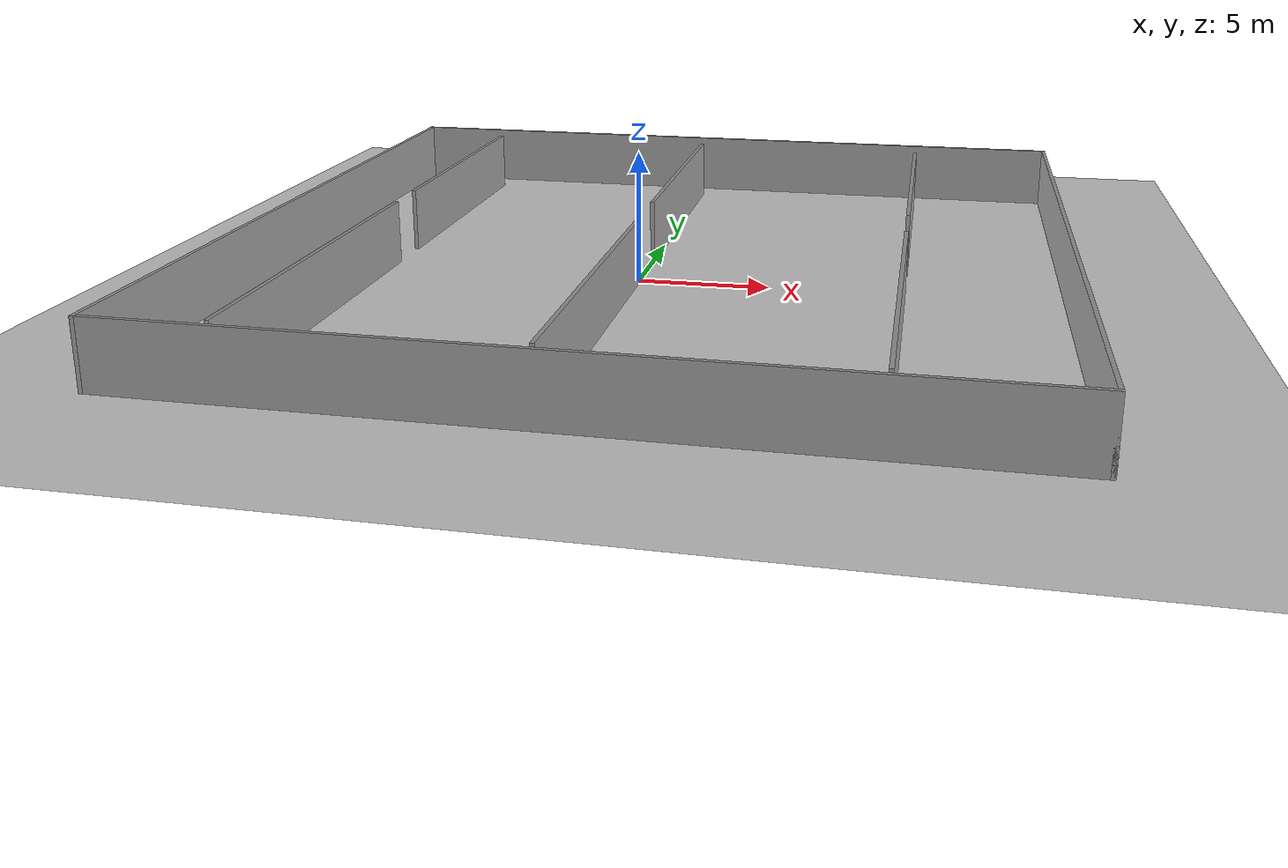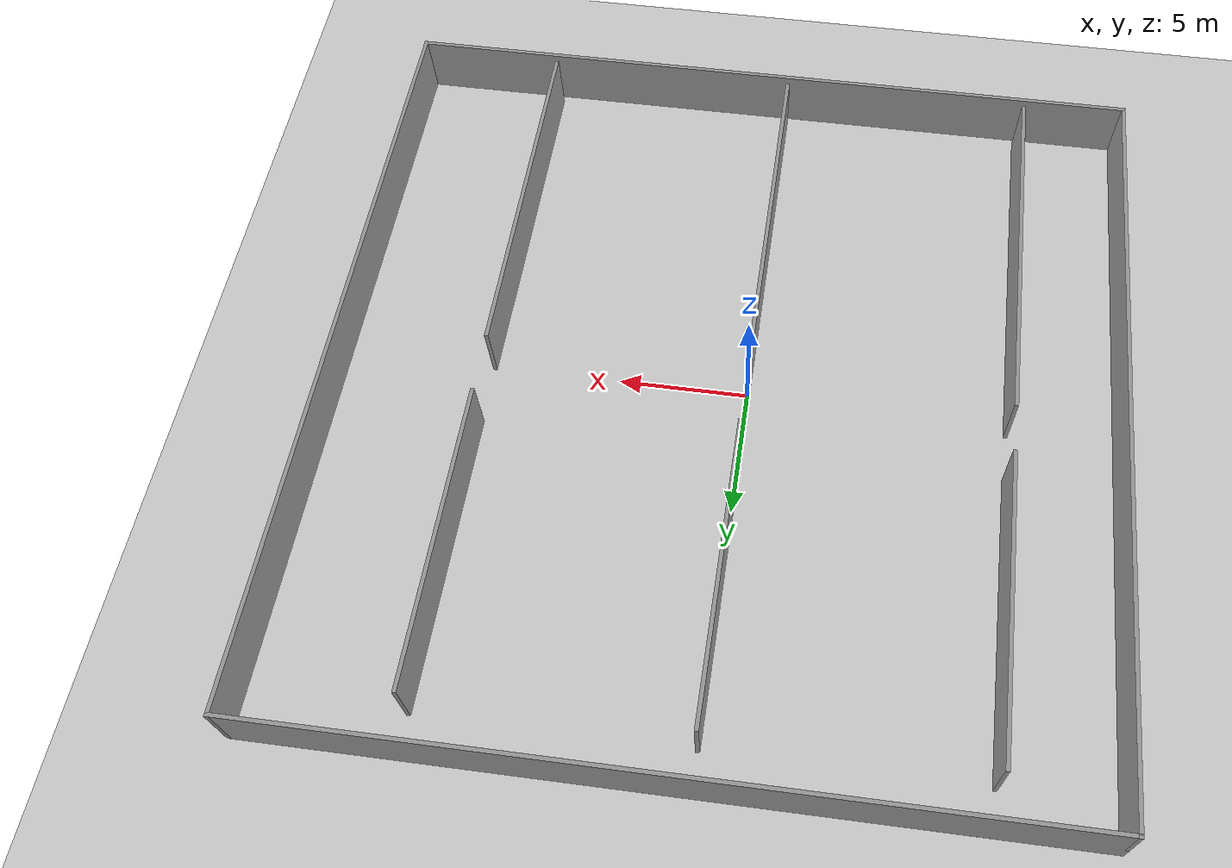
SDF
<sdf version="1.6">
 <world name="default">
  <light name="sun" type="directional">
   <pose>0 0 10 0 -0 0</pose>
   <diffuse>0.8 0.8 0.8 1</diffuse>
   <specular>0.2 0.2 0.2 1</specular>
   <attenuation>
    <range>1000</range>
    <constant>0.9</constant>
    <linear>0.01</linear>
    <quadratic>0.001</quadratic>
   </attenuation>
   <direction>-0.5 0.1 -0.9</direction>
  </light>
  <model name="ground_plane">
   <static>1</static>
   <link name="link">
    <collision name="collision">
     <geometry><plane><normal>0 0 1</normal><size>100 100</size></plane></geometry>
     <surface>
      <contact><collide_bitmask>65535</collide_bitmask></contact>
      <friction><ode><mu>100</mu><mu2>50</mu2></ode></friction>
     </surface>
    </collision>
    <visual name="visual">
     <cast_shadows>0</cast_shadows>
     <geometry><plane><normal>0 0 1</normal><size>100 100</size></plane></geometry>
     <material>
      <script><uri>file://media/materials/scripts/gazebo.material</uri><name>Gazebo/Grey</name></script>
     </material>
    </visual>
   </link>
  </model>
  <gravity>0 0 -9.8</gravity>
  <magnetic_field>6e-06 2.3e-05 -4.2e-05</magnetic_field>
  <atmosphere type="adiabatic"/>
  <physics name="default_physics" default="0" type="ode">
   <max_step_size>0.001</max_step_size>
   <real_time_factor>1</real_time_factor>
   <real_time_update_rate>1000</real_time_update_rate>
  </physics>
  <scene><ambient>0.4 0.4 0.4 1</ambient><background>0.7 0.7 0.7 1</background><shadows>1</shadows></scene>
  <audio><device>default</device></audio>
  <spherical_coordinates>
   <surface_model>EARTH_WGS84</surface_model>
   <latitude_deg>0</latitude_deg>
   <longitude_deg>0</longitude_deg>
   <elevation>0</elevation>
   <heading_deg>0</heading_deg>
  </spherical_coordinates>
  <model name="thirty_thirty">
   <pose>0.8458 0.557934 0 0 -0 0</pose>
   <link name="Wall_13">
    <collision name="Wall_13_Collision">
     <geometry><box><size>30.15 0.15 2.5</size></box></geometry>
     <pose>0 0 1.25 0 -0 0</pose>
    </collision>
    <visual name="Wall_13_Visual">
     <pose>0 0 1.25 0 -0 0</pose>
     <geometry><box><size>30.15 0.15 2.5</size></box></geometry>
     <material>
      <script><uri>file://media/materials/scripts/gazebo.material</uri><name>Gazebo/Grey</name></script>
      <ambient>1 1 1 1</ambient>
     </material>
     <meta><layer>0</layer></meta>
    </visual>
    <pose>-15 0 0 0 -0 -1.5708</pose>
   </link>
   <link name="Wall_16">
    <collision name="Wall_16_Collision">
     <geometry><box><size>30.15 0.15 2.5</size></box></geometry>
     <pose>0 0 1.25 0 -0 0</pose>
    </collision>
    <visual name="Wall_16_Visual">
     <pose>0 0 1.25 0 -0 0</pose>
     <geometry><box><size>30.15 0.15 2.5</size></box></geometry>
     <material>
      <script><uri>file://media/materials/scripts/gazebo.material</uri><name>Gazebo/Grey</name></script>
      <ambient>1 1 1 1</ambient>
     </material>
     <meta><layer>0</layer></meta>
    </visual>
    <pose>0 -15 0 0 -0 0</pose>
   </link>
   <link name="Wall_18">
    <collision name="Wall_18_Collision">
     <geometry><box><size>30.15 0.15 2.5</size></box></geometry>
     <pose>0 0 1.25 0 -0 0</pose>
    </collision>
    <visual name="Wall_18_Visual">
     <pose>0 0 1.25 0 -0 0</pose>
     <geometry><box><size>30.15 0.15 2.5</size></box></geometry>
     <material>
      <script><uri>file://media/materials/scripts/gazebo.material</uri><name>Gazebo/Grey</name></script>
      <ambient>1 1 1 1</ambient>
     </material>
     <meta><layer>0</layer></meta>
    </visual>
    <pose>15 0 0 0 -0 1.5708</pose>
   </link>
   <link name="Wall_20">
    <collision name="Wall_20_Collision">
     <geometry><box><size>30.15 0.15 2.5</size></box></geometry>
     <pose>0 0 1.25 0 -0 0</pose>
    </collision>
    <visual name="Wall_20_Visual">
     <pose>0 0 1.25 0 -0 0</pose>
     <geometry><box><size>30.15 0.15 2.5</size></box></geometry>
     <material>
      <script><uri>file://media/materials/scripts/gazebo.material</uri><name>Gazebo/Grey</name></script>
      <ambient>1 1 1 1</ambient>
     </material>
     <meta><layer>0</layer></meta>
    </visual>
    <pose>0 15 0 0 -0 0</pose>
   </link>
   <static>1</static>
  </model>
  <model name="Untitled1">
   <link name="Wall_13">
    <collision name="Wall_13_Collision">
     <geometry><box><size>14.15 0.15 2.5</size></box></geometry>
     <pose>0 0 1.25 0 -0 0</pose>
    </collision>
    <visual name="Wall_13_Visual">
     <pose>0 0 1.25 0 -0 0</pose>
     <geometry><box><size>14.15 0.15 2.5</size></box></geometry>
     <material>
      <script><uri>file://media/materials/scripts/gazebo.material</uri><name>Gazebo/Grey</name></script>
      <ambient>1 1 1 1</ambient>
     </material>
     <meta><layer>0</layer></meta>
    </visual>
    <pose>10 -7 0 0 -0 -1.5708</pose>
   </link>
   <link name="Wall_16">
    <collision name="Wall_16_Collision">
     <geometry><box><size>11.65 0.15 2.5</size></box></geometry>
     <pose>0 0 1.25 0 -0 0</pose>
    </collision>
    <visual name="Wall_16_Visual">
     <pose>0 0 1.25 0 -0 0</pose>
     <geometry><box><size>11.65 0.15 2.5</size></box></geometry>
     <material>
      <script><uri>file://media/materials/scripts/gazebo.material</uri><name>Gazebo/Grey</name></script>
      <ambient>1 1 1 1</ambient>
     </material>
     <meta><layer>0</layer></meta>
    </visual>
    <pose>10 8.25 0 0 -0 1.5708</pose>
   </link>
   <link name="Wall_18">
    <collision name="Wall_18_Collision">
     <geometry><box><size>14.65 0.15 2.5</size></box></geometry>
     <pose>0 0 1.25 0 -0 0</pose>
    </collision>
    <visual name="Wall_18_Visual">
     <pose>0 0 1.25 0 -0 0</pose>
     <geometry><box><size>14.65 0.15 2.5</size></box></geometry>
     <material>
      <script><uri>file://media/materials/scripts/gazebo.material</uri><name>Gazebo/Grey</name></script>
      <ambient>1 1 1 1</ambient>
     </material>
     <meta><layer>0</layer></meta>
    </visual>
    <pose>-10 -6.75 0 0 -0 1.5708</pose>
   </link>
   <link name="Wall_20">
    <collision name="Wall_20_Collision">
     <geometry><box><size>11.65 0.15 2.5</size></box></geometry>
     <pose>0 0 1.25 0 -0 0</pose>
    </collision>
    <visual name="Wall_20_Visual">
     <pose>0 0 1.25 0 -0 0</pose>
     <geometry><box><size>11.65 0.15 2.5</size></box></geometry>
     <material>
      <script><uri>file://media/materials/scripts/gazebo.material</uri><name>Gazebo/Grey</name></script>
      <ambient>1 1 1 1</ambient>
     </material>
     <meta><layer>0</layer></meta>
    </visual>
    <pose>-10 8.25 0 0 -0 -1.5708</pose>
   </link>
   <link name="Wall_23">
    <collision name="Wall_23_Collision">
     <geometry><box><size>11.65 0.15 2.5</size></box></geometry>
     <pose>0 0 1.25 0 -0 0</pose>
    </collision>
    <visual name="Wall_23_Visual">
     <pose>0 0 1.25 0 -0 0</pose>
     <geometry><box><size>11.65 0.15 2.5</size></box></geometry>
     <material>
      <script><uri>file://media/materials/scripts/gazebo.material</uri><name>Gazebo/Grey</name></script>
      <ambient>1 1 1 1</ambient>
     </material>
     <meta><layer>0</layer></meta>
    </visual>
    <pose>0 8.25 0 0 -0 -1.5708</pose>
   </link>
   <link name="Wall_25">
    <collision name="Wall_25_Collision">
     <geometry><box><size>13.65 0.15 2.5</size></box></geometry>
     <pose>0 0 1.25 0 -0 0</pose>
    </collision>
    <visual name="Wall_25_Visual">
     <pose>0 0 1.25 0 -0 0</pose>
     <geometry><box><size>13.65 0.15 2.5</size></box></geometry>
     <material>
      <script><uri>file://media/materials/scripts/gazebo.material</uri><name>Gazebo/Grey</name></script>
      <ambient>1 1 1 1</ambient>
     </material>
     <meta><layer>0</layer></meta>
    </visual>
    <pose>0 -7.25 0 0 -0 -1.5708</pose>
   </link>
   <static>1</static>
  </model>
  <plugin name="gazebo_occupancy_map" filename="libgazebo_2Dmap_plugin.so">
   <map_resolution>0.1</map_resolution>
   <map_height>1</map_height>
   <map_size_x>100</map_size_x>
   <map_size_y>100</map_size_y>
  </plugin>
 </world>
</sdf>
